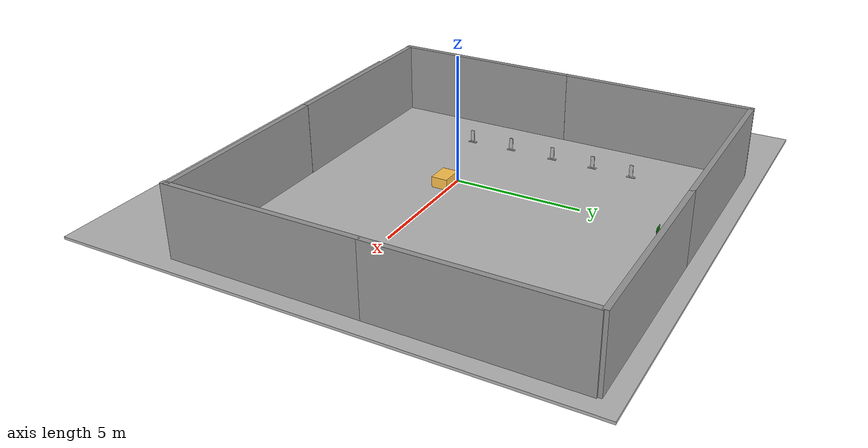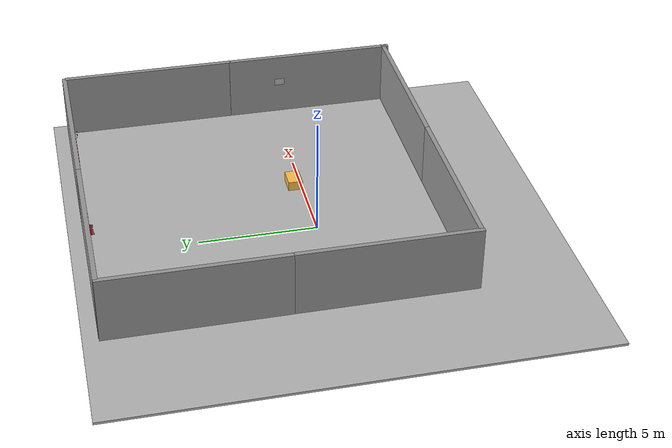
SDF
<sdf version="1.6">
 <world name="default">
  <light name="sun" type="directional">
   <pose>0 0 10 0 -0 0</pose>
   <diffuse>0.8 0.8 0.8 1</diffuse>
   <specular>0.2 0.2 0.2 1</specular>
   <attenuation>
    <range>1000</range>
    <constant>0.9</constant>
    <linear>0.01</linear>
    <quadratic>0.001</quadratic>
   </attenuation>
   <direction>-0.5 0.1 -0.9</direction>
  </light>
  <model name="concrete_plane">
   <static>1</static>
   <link name="concrete_plane_link">
    <collision name="concrete_plane_collision"><geometry><box><size>20 20 0.1</size></box></geometry></collision>
    <visual name="concrete_plane_visual">
     <cast_shadows>0</cast_shadows>
     <geometry><box><size>20 20 0.1</size></box></geometry>
     <material>
      <script>
       <uri>model://concrete_plane/materials/scripts</uri>
       <uri>model://concrete_plane/materials/textures</uri>
       <name>vrc/concrete</name>
      </script>
     </material>
    </visual>
   </link>
   <pose>0.261344 0.216016 0 0 -0 0</pose>
  </model>
  <model name="fire_extinguisher">
   <static>1</static>
   <link name="fire_extinguisher_link">
    <collision name="fire_extinguisher_collision">
     <geometry><mesh><uri>model://fire_extinguisher/meshes/model.dae</uri><scale>1 1 1</scale></mesh></geometry>
    </collision>
    <visual name="fire_extinguisher_mesh">
     <geometry><mesh><uri>model://fire_extinguisher/meshes/model.dae</uri><scale>1 1 1</scale></mesh></geometry>
    </visual>
   </link>
   <pose>1 9.26622 0.372121 0 -0 0</pose>
  </model>
  <model name="grey_wall1">
   <pose>-6.12589 -2.51043 0 0 -0 0</pose>
   <static>1</static>
   <link name="grey_wall::link">
    <pose>12 12 1.5 0 -0 0</pose>
    <collision name="collision"><geometry><box><size>7.5 0.2 2.8</size></box></geometry></collision>
    <visual name="visual">
     <cast_shadows>0</cast_shadows>
     <geometry><box><size>7.5 0.2 2.8</size></box></geometry>
     <material>
      <script>
       <uri>model://grey_wall/materials/scripts</uri>
       <uri>model://grey_wall/materials/textures</uri>
       <name>vrc/grey_wall</name>
      </script>
     </material>
    </visual>
   </link>
  </model>
  <model name="grey_wall2">
   <pose>-13.5535 -3.51095 0 0 -0 0</pose>
   <static>1</static>
   <link name="grey_wall::link">
    <pose>12 13 1.5 0 -0 0</pose>
    <collision name="collision"><geometry><box><size>7.5 0.2 2.8</size></box></geometry></collision>
    <visual name="visual">
     <cast_shadows>0</cast_shadows>
     <geometry><box><size>7.5 0.2 2.8</size></box></geometry>
     <material>
      <script>
       <uri>model://grey_wall/materials/scripts</uri>
       <uri>model://grey_wall/materials/textures</uri>
       <name>vrc/grey_wall</name>
      </script>
     </material>
    </visual>
   </link>
  </model>
  <model name="grey_wall3">
   <pose>-6.07707 -19.2584 0 0 -0 0</pose>
   <static>1</static>
   <link name="grey_wall::link">
    <pose>12 14 1.5 0 -0 0</pose>
    <collision name="collision"><geometry><box><size>7.5 0.2 2.8</size></box></geometry></collision>
    <visual name="visual">
     <cast_shadows>0</cast_shadows>
     <geometry><box><size>7.5 0.2 2.8</size></box></geometry>
     <material>
      <script>
       <uri>model://grey_wall/materials/scripts</uri>
       <uri>model://grey_wall/materials/textures</uri>
       <name>vrc/grey_wall</name>
      </script>
     </material>
    </visual>
   </link>
  </model>
  <model name="grey_wall5">
   <pose>-6.4168 17.7025 0 0 0 -1.5708</pose>
   <static>1</static>
   <link name="grey_wall::link">
    <pose>12 16 1.5 0 -0 0</pose>
    <collision name="collision"><geometry><box><size>7.5 0.2 2.8</size></box></geometry></collision>
    <visual name="visual">
     <cast_shadows>0</cast_shadows>
     <geometry><box><size>7.5 0.2 2.8</size></box></geometry>
     <material>
      <script>
       <uri>model://grey_wall/materials/scripts</uri>
       <uri>model://grey_wall/materials/textures</uri>
       <name>vrc/grey_wall</name>
      </script>
     </material>
    </visual>
   </link>
  </model>
  <model name="grey_wall6">
   <pose>-7.419 10.2783 0 0 0 -1.5708</pose>
   <static>1</static>
   <link name="grey_wall::link">
    <pose>12 17 1.5 0 -0 0</pose>
    <collision name="collision"><geometry><box><size>7.5 0.2 2.8</size></box></geometry></collision>
    <visual name="visual">
     <cast_shadows>0</cast_shadows>
     <geometry><box><size>7.5 0.2 2.8</size></box></geometry>
     <material>
      <script>
       <uri>model://grey_wall/materials/scripts</uri>
       <uri>model://grey_wall/materials/textures</uri>
       <name>vrc/grey_wall</name>
      </script>
     </material>
    </visual>
   </link>
  </model>
  <model name="grey_wall7">
   <pose>-23.3457 17.8259 0 0 0 -1.5708</pose>
   <static>1</static>
   <link name="grey_wall::link">
    <pose>12 18 1.5 0 -0 0</pose>
    <collision name="collision"><geometry><box><size>7.5 0.2 2.8</size></box></geometry></collision>
    <visual name="visual">
     <cast_shadows>0</cast_shadows>
     <geometry><box><size>7.5 0.2 2.8</size></box></geometry>
     <material>
      <script>
       <uri>model://grey_wall/materials/scripts</uri>
       <uri>model://grey_wall/materials/textures</uri>
       <name>vrc/grey_wall</name>
      </script>
     </material>
    </visual>
   </link>
  </model>
  <model name="grey_wall8">
   <pose>-24.339 10.3745 0 0 0 -1.5708</pose>
   <static>1</static>
   <link name="grey_wall::link">
    <pose>12 19 1.5 0 -0 0</pose>
    <collision name="collision"><geometry><box><size>7.5 0.2 2.8</size></box></geometry></collision>
    <visual name="visual">
     <cast_shadows>0</cast_shadows>
     <geometry><box><size>7.5 0.2 2.8</size></box></geometry>
     <material>
      <script>
       <uri>model://grey_wall/materials/scripts</uri>
       <uri>model://grey_wall/materials/textures</uri>
       <name>vrc/grey_wall</name>
      </script>
     </material>
    </visual>
   </link>
  </model>
  <model name="sign_confined_space">
   <static>1</static>
   <link name="sign_confined_space_link">
    <collision name="sign_confined_space_collision">
     <geometry>
      <mesh><uri>model://sign_confined_space/meshes/model.dae</uri><scale>0.5 0.5 0.5</scale></mesh>
     </geometry>
    </collision>
    <visual name="sign_confined_space_mesh">
     <cast_shadows>0</cast_shadows>
     <geometry>
      <mesh><uri>model://sign_confined_space/meshes/model.dae</uri><scale>0.5 0.5 0.5</scale></mesh>
     </geometry>
    </visual>
   </link>
   <pose>3.37164 9.38646 1.57868 0 -0 0</pose>
  </model>
  <model name="emergency_exit_door">
   <static>1</static>
   <link name="emergency_exit_door_link">
    <collision name="emergency_exit_door_collision">
     <geometry><mesh><uri>model://emergency_exit_door/meshes/model.dae</uri><scale>1 1 1</scale></mesh></geometry>
    </collision>
    <visual name="emergency_exit_door_mesh">
     <cast_shadows>0</cast_shadows>
     <geometry><mesh><uri>model://emergency_exit_door/meshes/model.dae</uri><scale>1 1 1</scale></mesh></geometry>
    </visual>
   </link>
   <pose>4 9.35323 -0.010212 0 -0 0</pose>
  </model>
  <gravity>0 0 -9.8</gravity>
  <magnetic_field>6e-06 2.3e-05 -4.2e-05</magnetic_field>
  <atmosphere type="adiabatic"/>
  <physics name="default_physics" default="0" type="ode">
   <max_step_size>0.001</max_step_size>
   <real_time_factor>1</real_time_factor>
   <real_time_update_rate>1000</real_time_update_rate>
  </physics>
  <scene><ambient>0.4 0.4 0.4 1</ambient><background>0.7 0.7 0.7 1</background><shadows>1</shadows></scene>
  <spherical_coordinates>
   <surface_model>EARTH_WGS84</surface_model>
   <latitude_deg>0</latitude_deg>
   <longitude_deg>0</longitude_deg>
   <elevation>0</elevation>
   <heading_deg>0</heading_deg>
  </spherical_coordinates>
  <model name="grey_wall">
   <static>1</static>
   <link name="link">
    <pose>0 0 1.4 0 -0 0</pose>
    <collision name="collision"><geometry><box><size>7.5 0.2 2.8</size></box></geometry></collision>
    <visual name="visual">
     <cast_shadows>0</cast_shadows>
     <geometry><box><size>7.5 0.2 2.8</size></box></geometry>
     <material>
      <script>
       <uri>model://grey_wall/materials/scripts</uri>
       <uri>model://grey_wall/materials/textures</uri>
       <name>vrc/grey_wall</name>
      </script>
     </material>
    </visual>
   </link>
   <pose>-1.51312 -5.25513 0.10019 0 -0 0</pose>
  </model>
  <model name="Box_33x15">
   <link name="Wall">
    <pose>0 0 0.1985 0 -0 0</pose>
    <inertial>
     <mass>5</mass>
     <inertia><ixx>0.2157</ixx><iyy>0.3597</iyy><izz>0.444</izz><ixy>0</ixy><ixz>0</ixz><iyz>0</iyz></inertia>
    </inertial>
    <collision name="Wall_Collision"><geometry><box><size>0.84 0.6 0.397</size></box></geometry></collision>
    <visual name="Wall_Visual">
     <geometry><box><size>0.84 0.6 0.397</size></box></geometry>
     <material>
      <script><uri>file://media/materials/scripts/gazebo.material</uri><name>Gazebo/Grey</name></script>
      <ambient>1 0.764706 0.305882 1</ambient>
     </material>
    </visual>
   </link>
   <static>1</static>
   <pose>2.04483 0.582939 0.92455 0 -0 0</pose>
  </model>
  <model name="safety_pole_3_clone">
   <static>1</static>
   <link name="safety_pole_link">
    <collision name="safety_pole_collision">
     <geometry><mesh><uri>model://safety_pole/meshes/model.dae</uri><scale>0.5 0.5 0.5</scale></mesh></geometry>
    </collision>
    <visual name="safety_pole_mesh">
     <geometry><mesh><uri>model://safety_pole/meshes/model.dae</uri><scale>0.5 0.5 0.5</scale></mesh></geometry>
    </visual>
   </link>
   <pose>-4.05727 0.423358 0.046743 0 -0 0</pose>
  </model>
  <model name="safety_pole_3_clone_clone">
   <static>1</static>
   <link name="safety_pole_link">
    <collision name="safety_pole_collision">
     <geometry><mesh><uri>model://safety_pole/meshes/model.dae</uri><scale>0.5 0.5 0.5</scale></mesh></geometry>
    </collision>
    <visual name="safety_pole_mesh">
     <geometry><mesh><uri>model://safety_pole/meshes/model.dae</uri><scale>0.5 0.5 0.5</scale></mesh></geometry>
    </visual>
   </link>
   <pose>-4.03631 2.24555 0.046743 0 -0 0</pose>
  </model>
  <model name="safety_pole_3_clone_clone_0">
   <static>1</static>
   <link name="safety_pole_link">
    <collision name="safety_pole_collision">
     <geometry><mesh><uri>model://safety_pole/meshes/model.dae</uri><scale>0.5 0.5 0.5</scale></mesh></geometry>
    </collision>
    <visual name="safety_pole_mesh">
     <geometry><mesh><uri>model://safety_pole/meshes/model.dae</uri><scale>0.5 0.5 0.5</scale></mesh></geometry>
    </visual>
   </link>
   <pose>-4.04041 3.95024 0.046743 0 -0 0</pose>
  </model>
  <model name="safety_pole_3_clone_clone_1">
   <static>1</static>
   <link name="safety_pole_link">
    <collision name="safety_pole_collision">
     <geometry><mesh><uri>model://safety_pole/meshes/model.dae</uri><scale>0.5 0.5 0.5</scale></mesh></geometry>
    </collision>
    <visual name="safety_pole_mesh">
     <geometry><mesh><uri>model://safety_pole/meshes/model.dae</uri><scale>0.5 0.5 0.5</scale></mesh></geometry>
    </visual>
   </link>
   <pose>-3.99195 5.5492 0.046743 0 -0 0</pose>
  </model>
  <model name="safety_pole_3_clone_clone_2">
   <static>1</static>
   <link name="safety_pole_link">
    <collision name="safety_pole_collision">
     <geometry><mesh><uri>model://safety_pole/meshes/model.dae</uri><scale>0.5 0.5 0.5</scale></mesh></geometry>
    </collision>
    <visual name="safety_pole_mesh">
     <geometry><mesh><uri>model://safety_pole/meshes/model.dae</uri><scale>0.5 0.5 0.5</scale></mesh></geometry>
    </visual>
   </link>
   <pose>-4.01297 -1.2974 0.046743 0 -0 0</pose>
  </model>
  <model name="sign_confined_space_0">
   <static>1</static>
   <link name="sign_confined_space_link">
    <collision name="sign_confined_space_collision">
     <geometry>
      <mesh><uri>model://sign_confined_space/meshes/model.dae</uri><scale>1.5 1.5 1.5</scale></mesh>
     </geometry>
    </collision>
    <visual name="sign_confined_space_mesh">
     <cast_shadows>0</cast_shadows>
     <geometry>
      <mesh><uri>model://sign_confined_space/meshes/model.dae</uri><scale>1.5 1.5 1.5</scale></mesh>
     </geometry>
    </visual>
   </link>
   <pose>9.45834 -0.059923 1.4884 0 0 -1.5708</pose>
  </model>
 </world>
</sdf>
